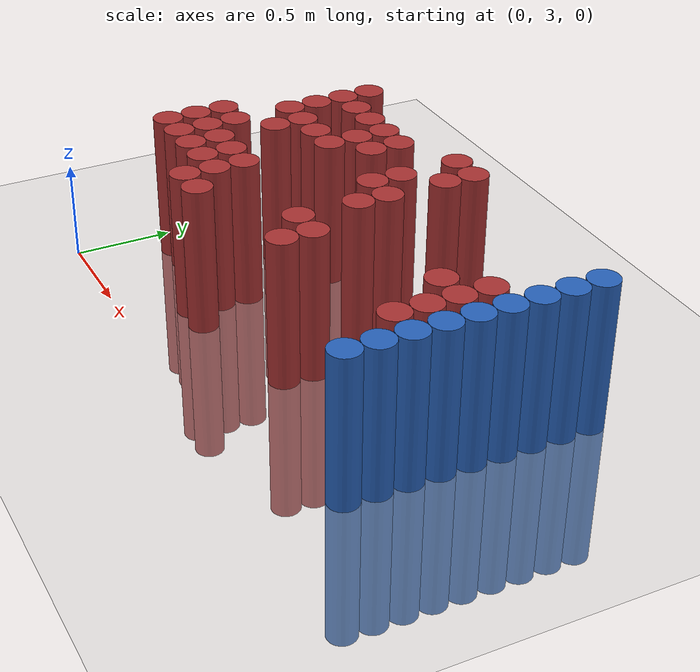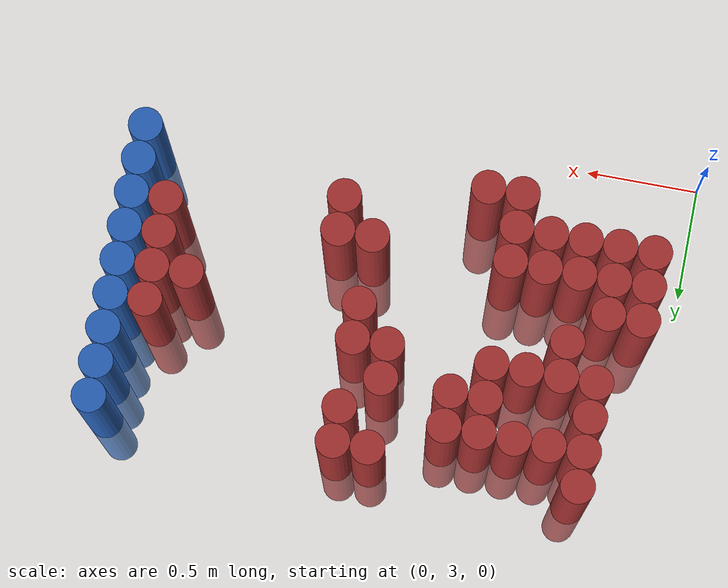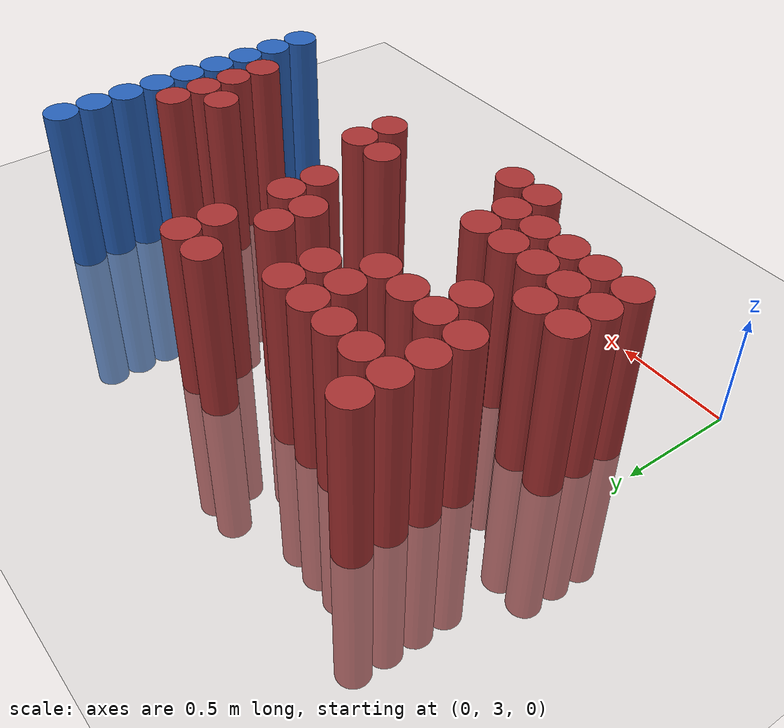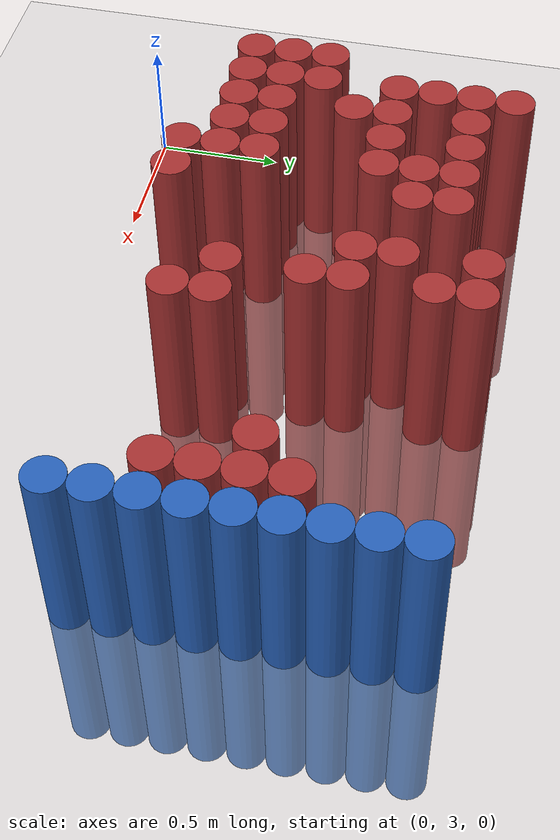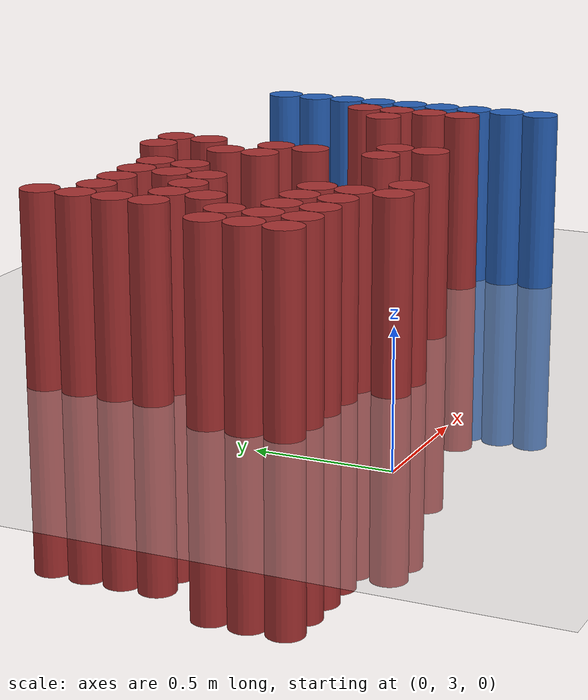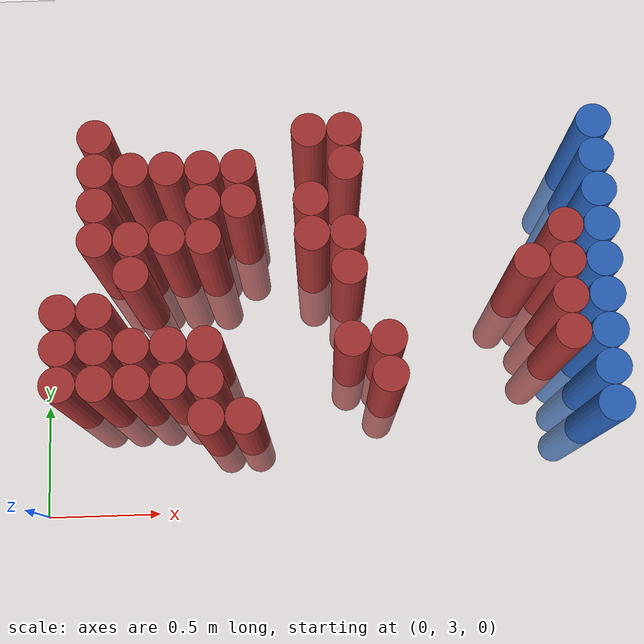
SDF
<sdf version="1.6">
 <world name="default">
  <model name="ground_plane">
   <static>1</static>
   <link name="link">
    <collision name="collision">
     <geometry><plane><normal>0 0 1</normal><size>100 100</size></plane></geometry>
     <surface><friction><ode><mu>100</mu><mu2>50</mu2></ode></friction></surface>
    </collision>
    <visual name="visual">
     <cast_shadows>0</cast_shadows>
     <geometry><plane><normal>0 0 1</normal><size>100 100</size></plane></geometry>
     <material>
      <script><uri>file://media/materials/scripts/gazebo.material</uri><name>Gazebo/Grey</name></script>
     </material>
    </visual>
   </link>
  </model>
  <model name="unit_cylinder_152">
   <static>1</static>
   <pose>0.175000 3.475000 0.000000 0.000000 0.000000 0.000000</pose>
   <link name="link">
    <inertial>
     <mass>1</mass>
     <inertia><ixx>0.145833</ixx><ixy>0</ixy><ixz>0</ixz><iyy>0.145833</iyy><iyz>0</iyz><izz>0.125</izz></inertia>
    </inertial>
    <collision name="collision">
     <geometry><cylinder><radius>0.075000</radius><length>1.5</length></cylinder></geometry>
    </collision>
    <visual name="visual">
     <geometry><cylinder><radius>0.075000</radius><length>1.5</length></cylinder></geometry>
     <material>
      <ambient>0.648000 0.192000 0.192000 1</ambient>
      <diffuse>0.648000 0.192000 0.192000 1</diffuse>
     </material>
     <material>
      <script><name>Gazebo/Grey</name><uri>file://media/materials/scripts/gazebo.material</uri></script>
     </material>
    </visual>
   </link>
  </model>
  <model name="unit_cylinder_153">
   <static>1</static>
   <pose>0.175000 3.625000 0.000000 0.000000 0.000000 0.000000</pose>
   <link name="link">
    <inertial>
     <mass>1</mass>
     <inertia><ixx>0.145833</ixx><ixy>0</ixy><ixz>0</ixz><iyy>0.145833</iyy><iyz>0</iyz><izz>0.125</izz></inertia>
    </inertial>
    <collision name="collision">
     <geometry><cylinder><radius>0.075000</radius><length>1.5</length></cylinder></geometry>
    </collision>
    <visual name="visual">
     <geometry><cylinder><radius>0.075000</radius><length>1.5</length></cylinder></geometry>
     <material>
      <ambient>0.648000 0.192000 0.192000 1</ambient>
      <diffuse>0.648000 0.192000 0.192000 1</diffuse>
     </material>
     <material>
      <script><name>Gazebo/Grey</name><uri>file://media/materials/scripts/gazebo.material</uri></script>
     </material>
    </visual>
   </link>
  </model>
  <model name="unit_cylinder_154">
   <static>1</static>
   <pose>0.175000 3.775000 0.000000 0.000000 0.000000 0.000000</pose>
   <link name="link">
    <inertial>
     <mass>1</mass>
     <inertia><ixx>0.145833</ixx><ixy>0</ixy><ixz>0</ixz><iyy>0.145833</iyy><iyz>0</iyz><izz>0.125</izz></inertia>
    </inertial>
    <collision name="collision">
     <geometry><cylinder><radius>0.075000</radius><length>1.5</length></cylinder></geometry>
    </collision>
    <visual name="visual">
     <geometry><cylinder><radius>0.075000</radius><length>1.5</length></cylinder></geometry>
     <material>
      <ambient>0.648000 0.192000 0.192000 1</ambient>
      <diffuse>0.648000 0.192000 0.192000 1</diffuse>
     </material>
     <material>
      <script><name>Gazebo/Grey</name><uri>file://media/materials/scripts/gazebo.material</uri></script>
     </material>
    </visual>
   </link>
  </model>
  <model name="unit_cylinder_156">
   <static>1</static>
   <pose>0.325000 3.475000 0.000000 0.000000 0.000000 0.000000</pose>
   <link name="link">
    <inertial>
     <mass>1</mass>
     <inertia><ixx>0.145833</ixx><ixy>0</ixy><ixz>0</ixz><iyy>0.145833</iyy><iyz>0</iyz><izz>0.125</izz></inertia>
    </inertial>
    <collision name="collision">
     <geometry><cylinder><radius>0.075000</radius><length>1.5</length></cylinder></geometry>
    </collision>
    <visual name="visual">
     <geometry><cylinder><radius>0.075000</radius><length>1.5</length></cylinder></geometry>
     <material>
      <ambient>0.648000 0.192000 0.192000 1</ambient>
      <diffuse>0.648000 0.192000 0.192000 1</diffuse>
     </material>
     <material>
      <script><name>Gazebo/Grey</name><uri>file://media/materials/scripts/gazebo.material</uri></script>
     </material>
    </visual>
   </link>
  </model>
  <model name="unit_cylinder_157">
   <static>1</static>
   <pose>0.325000 3.625000 0.000000 0.000000 0.000000 0.000000</pose>
   <link name="link">
    <inertial>
     <mass>1</mass>
     <inertia><ixx>0.145833</ixx><ixy>0</ixy><ixz>0</ixz><iyy>0.145833</iyy><iyz>0</iyz><izz>0.125</izz></inertia>
    </inertial>
    <collision name="collision">
     <geometry><cylinder><radius>0.075000</radius><length>1.5</length></cylinder></geometry>
    </collision>
    <visual name="visual">
     <geometry><cylinder><radius>0.075000</radius><length>1.5</length></cylinder></geometry>
     <material>
      <ambient>0.648000 0.192000 0.192000 1</ambient>
      <diffuse>0.648000 0.192000 0.192000 1</diffuse>
     </material>
     <material>
      <script><name>Gazebo/Grey</name><uri>file://media/materials/scripts/gazebo.material</uri></script>
     </material>
    </visual>
   </link>
  </model>
  <model name="unit_cylinder_158">
   <static>1</static>
   <pose>0.325000 3.775000 0.000000 0.000000 0.000000 0.000000</pose>
   <link name="link">
    <inertial>
     <mass>1</mass>
     <inertia><ixx>0.145833</ixx><ixy>0</ixy><ixz>0</ixz><iyy>0.145833</iyy><iyz>0</iyz><izz>0.125</izz></inertia>
    </inertial>
    <collision name="collision">
     <geometry><cylinder><radius>0.075000</radius><length>1.5</length></cylinder></geometry>
    </collision>
    <visual name="visual">
     <geometry><cylinder><radius>0.075000</radius><length>1.5</length></cylinder></geometry>
     <material>
      <ambient>0.648000 0.192000 0.192000 1</ambient>
      <diffuse>0.648000 0.192000 0.192000 1</diffuse>
     </material>
     <material>
      <script><name>Gazebo/Grey</name><uri>file://media/materials/scripts/gazebo.material</uri></script>
     </material>
    </visual>
   </link>
  </model>
  <model name="unit_cylinder_159">
   <static>1</static>
   <pose>0.325000 4.075000 0.000000 0.000000 0.000000 0.000000</pose>
   <link name="link">
    <inertial>
     <mass>1</mass>
     <inertia><ixx>0.145833</ixx><ixy>0</ixy><ixz>0</ixz><iyy>0.145833</iyy><iyz>0</iyz><izz>0.125</izz></inertia>
    </inertial>
    <collision name="collision">
     <geometry><cylinder><radius>0.075000</radius><length>1.5</length></cylinder></geometry>
    </collision>
    <visual name="visual">
     <geometry><cylinder><radius>0.075000</radius><length>1.5</length></cylinder></geometry>
     <material>
      <ambient>0.648000 0.192000 0.192000 1</ambient>
      <diffuse>0.648000 0.192000 0.192000 1</diffuse>
     </material>
     <material>
      <script><name>Gazebo/Grey</name><uri>file://media/materials/scripts/gazebo.material</uri></script>
     </material>
    </visual>
   </link>
  </model>
  <model name="unit_cylinder_160">
   <static>1</static>
   <pose>0.325000 4.225000 0.000000 0.000000 0.000000 0.000000</pose>
   <link name="link">
    <inertial>
     <mass>1</mass>
     <inertia><ixx>0.145833</ixx><ixy>0</ixy><ixz>0</ixz><iyy>0.145833</iyy><iyz>0</iyz><izz>0.125</izz></inertia>
    </inertial>
    <collision name="collision">
     <geometry><cylinder><radius>0.075000</radius><length>1.5</length></cylinder></geometry>
    </collision>
    <visual name="visual">
     <geometry><cylinder><radius>0.075000</radius><length>1.5</length></cylinder></geometry>
     <material>
      <ambient>0.648000 0.192000 0.192000 1</ambient>
      <diffuse>0.648000 0.192000 0.192000 1</diffuse>
     </material>
     <material>
      <script><name>Gazebo/Grey</name><uri>file://media/materials/scripts/gazebo.material</uri></script>
     </material>
    </visual>
   </link>
  </model>
  <model name="unit_cylinder_161">
   <static>1</static>
   <pose>0.325000 4.375000 0.000000 0.000000 0.000000 0.000000</pose>
   <link name="link">
    <inertial>
     <mass>1</mass>
     <inertia><ixx>0.145833</ixx><ixy>0</ixy><ixz>0</ixz><iyy>0.145833</iyy><iyz>0</iyz><izz>0.125</izz></inertia>
    </inertial>
    <collision name="collision">
     <geometry><cylinder><radius>0.075000</radius><length>1.5</length></cylinder></geometry>
    </collision>
    <visual name="visual">
     <geometry><cylinder><radius>0.075000</radius><length>1.5</length></cylinder></geometry>
     <material>
      <ambient>0.648000 0.192000 0.192000 1</ambient>
      <diffuse>0.648000 0.192000 0.192000 1</diffuse>
     </material>
     <material>
      <script><name>Gazebo/Grey</name><uri>file://media/materials/scripts/gazebo.material</uri></script>
     </material>
    </visual>
   </link>
  </model>
  <model name="unit_cylinder_162">
   <static>1</static>
   <pose>0.325000 4.525000 0.000000 0.000000 0.000000 0.000000</pose>
   <link name="link">
    <inertial>
     <mass>1</mass>
     <inertia><ixx>0.145833</ixx><ixy>0</ixy><ixz>0</ixz><iyy>0.145833</iyy><iyz>0</iyz><izz>0.125</izz></inertia>
    </inertial>
    <collision name="collision">
     <geometry><cylinder><radius>0.075000</radius><length>1.5</length></cylinder></geometry>
    </collision>
    <visual name="visual">
     <geometry><cylinder><radius>0.075000</radius><length>1.5</length></cylinder></geometry>
     <material>
      <ambient>0.648000 0.192000 0.192000 1</ambient>
      <diffuse>0.648000 0.192000 0.192000 1</diffuse>
     </material>
     <material>
      <script><name>Gazebo/Grey</name><uri>file://media/materials/scripts/gazebo.material</uri></script>
     </material>
    </visual>
   </link>
  </model>
  <model name="unit_cylinder_165">
   <static>1</static>
   <pose>0.475000 3.475000 0.000000 0.000000 0.000000 0.000000</pose>
   <link name="link">
    <inertial>
     <mass>1</mass>
     <inertia><ixx>0.145833</ixx><ixy>0</ixy><ixz>0</ixz><iyy>0.145833</iyy><iyz>0</iyz><izz>0.125</izz></inertia>
    </inertial>
    <collision name="collision">
     <geometry><cylinder><radius>0.075000</radius><length>1.5</length></cylinder></geometry>
    </collision>
    <visual name="visual">
     <geometry><cylinder><radius>0.075000</radius><length>1.5</length></cylinder></geometry>
     <material>
      <ambient>0.648000 0.192000 0.192000 1</ambient>
      <diffuse>0.648000 0.192000 0.192000 1</diffuse>
     </material>
     <material>
      <script><name>Gazebo/Grey</name><uri>file://media/materials/scripts/gazebo.material</uri></script>
     </material>
    </visual>
   </link>
  </model>
  <model name="unit_cylinder_166">
   <static>1</static>
   <pose>0.475000 3.625000 0.000000 0.000000 0.000000 0.000000</pose>
   <link name="link">
    <inertial>
     <mass>1</mass>
     <inertia><ixx>0.145833</ixx><ixy>0</ixy><ixz>0</ixz><iyy>0.145833</iyy><iyz>0</iyz><izz>0.125</izz></inertia>
    </inertial>
    <collision name="collision">
     <geometry><cylinder><radius>0.075000</radius><length>1.5</length></cylinder></geometry>
    </collision>
    <visual name="visual">
     <geometry><cylinder><radius>0.075000</radius><length>1.5</length></cylinder></geometry>
     <material>
      <ambient>0.648000 0.192000 0.192000 1</ambient>
      <diffuse>0.648000 0.192000 0.192000 1</diffuse>
     </material>
     <material>
      <script><name>Gazebo/Grey</name><uri>file://media/materials/scripts/gazebo.material</uri></script>
     </material>
    </visual>
   </link>
  </model>
  <model name="unit_cylinder_167">
   <static>1</static>
   <pose>0.475000 3.925000 0.000000 0.000000 0.000000 0.000000</pose>
   <link name="link">
    <inertial>
     <mass>1</mass>
     <inertia><ixx>0.145833</ixx><ixy>0</ixy><ixz>0</ixz><iyy>0.145833</iyy><iyz>0</iyz><izz>0.125</izz></inertia>
    </inertial>
    <collision name="collision">
     <geometry><cylinder><radius>0.075000</radius><length>1.5</length></cylinder></geometry>
    </collision>
    <visual name="visual">
     <geometry><cylinder><radius>0.075000</radius><length>1.5</length></cylinder></geometry>
     <material>
      <ambient>0.648000 0.192000 0.192000 1</ambient>
      <diffuse>0.648000 0.192000 0.192000 1</diffuse>
     </material>
     <material>
      <script><name>Gazebo/Grey</name><uri>file://media/materials/scripts/gazebo.material</uri></script>
     </material>
    </visual>
   </link>
  </model>
  <model name="unit_cylinder_168">
   <static>1</static>
   <pose>0.475000 4.075000 0.000000 0.000000 0.000000 0.000000</pose>
   <link name="link">
    <inertial>
     <mass>1</mass>
     <inertia><ixx>0.145833</ixx><ixy>0</ixy><ixz>0</ixz><iyy>0.145833</iyy><iyz>0</iyz><izz>0.125</izz></inertia>
    </inertial>
    <collision name="collision">
     <geometry><cylinder><radius>0.075000</radius><length>1.5</length></cylinder></geometry>
    </collision>
    <visual name="visual">
     <geometry><cylinder><radius>0.075000</radius><length>1.5</length></cylinder></geometry>
     <material>
      <ambient>0.648000 0.192000 0.192000 1</ambient>
      <diffuse>0.648000 0.192000 0.192000 1</diffuse>
     </material>
     <material>
      <script><name>Gazebo/Grey</name><uri>file://media/materials/scripts/gazebo.material</uri></script>
     </material>
    </visual>
   </link>
  </model>
  <model name="unit_cylinder_169">
   <static>1</static>
   <pose>0.475000 4.375000 0.000000 0.000000 0.000000 0.000000</pose>
   <link name="link">
    <inertial>
     <mass>1</mass>
     <inertia><ixx>0.145833</ixx><ixy>0</ixy><ixz>0</ixz><iyy>0.145833</iyy><iyz>0</iyz><izz>0.125</izz></inertia>
    </inertial>
    <collision name="collision">
     <geometry><cylinder><radius>0.075000</radius><length>1.5</length></cylinder></geometry>
    </collision>
    <visual name="visual">
     <geometry><cylinder><radius>0.075000</radius><length>1.5</length></cylinder></geometry>
     <material>
      <ambient>0.648000 0.192000 0.192000 1</ambient>
      <diffuse>0.648000 0.192000 0.192000 1</diffuse>
     </material>
     <material>
      <script><name>Gazebo/Grey</name><uri>file://media/materials/scripts/gazebo.material</uri></script>
     </material>
    </visual>
   </link>
  </model>
  <model name="unit_cylinder_172">
   <static>1</static>
   <pose>0.625000 3.475000 0.000000 0.000000 0.000000 0.000000</pose>
   <link name="link">
    <inertial>
     <mass>1</mass>
     <inertia><ixx>0.145833</ixx><ixy>0</ixy><ixz>0</ixz><iyy>0.145833</iyy><iyz>0</iyz><izz>0.125</izz></inertia>
    </inertial>
    <collision name="collision">
     <geometry><cylinder><radius>0.075000</radius><length>1.5</length></cylinder></geometry>
    </collision>
    <visual name="visual">
     <geometry><cylinder><radius>0.075000</radius><length>1.5</length></cylinder></geometry>
     <material>
      <ambient>0.648000 0.192000 0.192000 1</ambient>
      <diffuse>0.648000 0.192000 0.192000 1</diffuse>
     </material>
     <material>
      <script><name>Gazebo/Grey</name><uri>file://media/materials/scripts/gazebo.material</uri></script>
     </material>
    </visual>
   </link>
  </model>
  <model name="unit_cylinder_173">
   <static>1</static>
   <pose>0.625000 3.625000 0.000000 0.000000 0.000000 0.000000</pose>
   <link name="link">
    <inertial>
     <mass>1</mass>
     <inertia><ixx>0.145833</ixx><ixy>0</ixy><ixz>0</ixz><iyy>0.145833</iyy><iyz>0</iyz><izz>0.125</izz></inertia>
    </inertial>
    <collision name="collision">
     <geometry><cylinder><radius>0.075000</radius><length>1.5</length></cylinder></geometry>
    </collision>
    <visual name="visual">
     <geometry><cylinder><radius>0.075000</radius><length>1.5</length></cylinder></geometry>
     <material>
      <ambient>0.648000 0.192000 0.192000 1</ambient>
      <diffuse>0.648000 0.192000 0.192000 1</diffuse>
     </material>
     <material>
      <script><name>Gazebo/Grey</name><uri>file://media/materials/scripts/gazebo.material</uri></script>
     </material>
    </visual>
   </link>
  </model>
  <model name="unit_cylinder_174">
   <static>1</static>
   <pose>0.625000 4.075000 0.000000 0.000000 0.000000 0.000000</pose>
   <link name="link">
    <inertial>
     <mass>1</mass>
     <inertia><ixx>0.145833</ixx><ixy>0</ixy><ixz>0</ixz><iyy>0.145833</iyy><iyz>0</iyz><izz>0.125</izz></inertia>
    </inertial>
    <collision name="collision">
     <geometry><cylinder><radius>0.075000</radius><length>1.5</length></cylinder></geometry>
    </collision>
    <visual name="visual">
     <geometry><cylinder><radius>0.075000</radius><length>1.5</length></cylinder></geometry>
     <material>
      <ambient>0.648000 0.192000 0.192000 1</ambient>
      <diffuse>0.648000 0.192000 0.192000 1</diffuse>
     </material>
     <material>
      <script><name>Gazebo/Grey</name><uri>file://media/materials/scripts/gazebo.material</uri></script>
     </material>
    </visual>
   </link>
  </model>
  <model name="unit_cylinder_175">
   <static>1</static>
   <pose>0.625000 4.375000 0.000000 0.000000 0.000000 0.000000</pose>
   <link name="link">
    <inertial>
     <mass>1</mass>
     <inertia><ixx>0.145833</ixx><ixy>0</ixy><ixz>0</ixz><iyy>0.145833</iyy><iyz>0</iyz><izz>0.125</izz></inertia>
    </inertial>
    <collision name="collision">
     <geometry><cylinder><radius>0.075000</radius><length>1.5</length></cylinder></geometry>
    </collision>
    <visual name="visual">
     <geometry><cylinder><radius>0.075000</radius><length>1.5</length></cylinder></geometry>
     <material>
      <ambient>0.648000 0.192000 0.192000 1</ambient>
      <diffuse>0.648000 0.192000 0.192000 1</diffuse>
     </material>
     <material>
      <script><name>Gazebo/Grey</name><uri>file://media/materials/scripts/gazebo.material</uri></script>
     </material>
    </visual>
   </link>
  </model>
  <model name="unit_cylinder_181">
   <static>1</static>
   <pose>0.775000 3.325000 0.000000 0.000000 0.000000 0.000000</pose>
   <link name="link">
    <inertial>
     <mass>1</mass>
     <inertia><ixx>0.145833</ixx><ixy>0</ixy><ixz>0</ixz><iyy>0.145833</iyy><iyz>0</iyz><izz>0.125</izz></inertia>
    </inertial>
    <collision name="collision">
     <geometry><cylinder><radius>0.075000</radius><length>1.5</length></cylinder></geometry>
    </collision>
    <visual name="visual">
     <geometry><cylinder><radius>0.075000</radius><length>1.5</length></cylinder></geometry>
     <material>
      <ambient>0.648000 0.192000 0.192000 1</ambient>
      <diffuse>0.648000 0.192000 0.192000 1</diffuse>
     </material>
     <material>
      <script><name>Gazebo/Grey</name><uri>file://media/materials/scripts/gazebo.material</uri></script>
     </material>
    </visual>
   </link>
  </model>
  <model name="unit_cylinder_182">
   <static>1</static>
   <pose>0.775000 3.475000 0.000000 0.000000 0.000000 0.000000</pose>
   <link name="link">
    <inertial>
     <mass>1</mass>
     <inertia><ixx>0.145833</ixx><ixy>0</ixy><ixz>0</ixz><iyy>0.145833</iyy><iyz>0</iyz><izz>0.125</izz></inertia>
    </inertial>
    <collision name="collision">
     <geometry><cylinder><radius>0.075000</radius><length>1.5</length></cylinder></geometry>
    </collision>
    <visual name="visual">
     <geometry><cylinder><radius>0.075000</radius><length>1.5</length></cylinder></geometry>
     <material>
      <ambient>0.648000 0.192000 0.192000 1</ambient>
      <diffuse>0.648000 0.192000 0.192000 1</diffuse>
     </material>
     <material>
      <script><name>Gazebo/Grey</name><uri>file://media/materials/scripts/gazebo.material</uri></script>
     </material>
    </visual>
   </link>
  </model>
  <model name="unit_cylinder_183">
   <static>1</static>
   <pose>0.775000 3.625000 0.000000 0.000000 0.000000 0.000000</pose>
   <link name="link">
    <inertial>
     <mass>1</mass>
     <inertia><ixx>0.145833</ixx><ixy>0</ixy><ixz>0</ixz><iyy>0.145833</iyy><iyz>0</iyz><izz>0.125</izz></inertia>
    </inertial>
    <collision name="collision">
     <geometry><cylinder><radius>0.075000</radius><length>1.5</length></cylinder></geometry>
    </collision>
    <visual name="visual">
     <geometry><cylinder><radius>0.075000</radius><length>1.5</length></cylinder></geometry>
     <material>
      <ambient>0.648000 0.192000 0.192000 1</ambient>
      <diffuse>0.648000 0.192000 0.192000 1</diffuse>
     </material>
     <material>
      <script><name>Gazebo/Grey</name><uri>file://media/materials/scripts/gazebo.material</uri></script>
     </material>
    </visual>
   </link>
  </model>
  <model name="unit_cylinder_184">
   <static>1</static>
   <pose>0.775000 4.075000 0.000000 0.000000 0.000000 0.000000</pose>
   <link name="link">
    <inertial>
     <mass>1</mass>
     <inertia><ixx>0.145833</ixx><ixy>0</ixy><ixz>0</ixz><iyy>0.145833</iyy><iyz>0</iyz><izz>0.125</izz></inertia>
    </inertial>
    <collision name="collision">
     <geometry><cylinder><radius>0.075000</radius><length>1.5</length></cylinder></geometry>
    </collision>
    <visual name="visual">
     <geometry><cylinder><radius>0.075000</radius><length>1.5</length></cylinder></geometry>
     <material>
      <ambient>0.648000 0.192000 0.192000 1</ambient>
      <diffuse>0.648000 0.192000 0.192000 1</diffuse>
     </material>
     <material>
      <script><name>Gazebo/Grey</name><uri>file://media/materials/scripts/gazebo.material</uri></script>
     </material>
    </visual>
   </link>
  </model>
  <model name="unit_cylinder_185">
   <static>1</static>
   <pose>0.775000 4.225000 0.000000 0.000000 0.000000 0.000000</pose>
   <link name="link">
    <inertial>
     <mass>1</mass>
     <inertia><ixx>0.145833</ixx><ixy>0</ixy><ixz>0</ixz><iyy>0.145833</iyy><iyz>0</iyz><izz>0.125</izz></inertia>
    </inertial>
    <collision name="collision">
     <geometry><cylinder><radius>0.075000</radius><length>1.5</length></cylinder></geometry>
    </collision>
    <visual name="visual">
     <geometry><cylinder><radius>0.075000</radius><length>1.5</length></cylinder></geometry>
     <material>
      <ambient>0.648000 0.192000 0.192000 1</ambient>
      <diffuse>0.648000 0.192000 0.192000 1</diffuse>
     </material>
     <material>
      <script><name>Gazebo/Grey</name><uri>file://media/materials/scripts/gazebo.material</uri></script>
     </material>
    </visual>
   </link>
  </model>
  <model name="unit_cylinder_186">
   <static>1</static>
   <pose>0.775000 4.375000 0.000000 0.000000 0.000000 0.000000</pose>
   <link name="link">
    <inertial>
     <mass>1</mass>
     <inertia><ixx>0.145833</ixx><ixy>0</ixy><ixz>0</ixz><iyy>0.145833</iyy><iyz>0</iyz><izz>0.125</izz></inertia>
    </inertial>
    <collision name="collision">
     <geometry><cylinder><radius>0.075000</radius><length>1.5</length></cylinder></geometry>
    </collision>
    <visual name="visual">
     <geometry><cylinder><radius>0.075000</radius><length>1.5</length></cylinder></geometry>
     <material>
      <ambient>0.648000 0.192000 0.192000 1</ambient>
      <diffuse>0.648000 0.192000 0.192000 1</diffuse>
     </material>
     <material>
      <script><name>Gazebo/Grey</name><uri>file://media/materials/scripts/gazebo.material</uri></script>
     </material>
    </visual>
   </link>
  </model>
  <model name="unit_cylinder_189">
   <static>1</static>
   <pose>0.925000 3.325000 0.000000 0.000000 0.000000 0.000000</pose>
   <link name="link">
    <inertial>
     <mass>1</mass>
     <inertia><ixx>0.145833</ixx><ixy>0</ixy><ixz>0</ixz><iyy>0.145833</iyy><iyz>0</iyz><izz>0.125</izz></inertia>
    </inertial>
    <collision name="collision">
     <geometry><cylinder><radius>0.075000</radius><length>1.5</length></cylinder></geometry>
    </collision>
    <visual name="visual">
     <geometry><cylinder><radius>0.075000</radius><length>1.5</length></cylinder></geometry>
     <material>
      <ambient>0.648000 0.192000 0.192000 1</ambient>
      <diffuse>0.648000 0.192000 0.192000 1</diffuse>
     </material>
     <material>
      <script><name>Gazebo/Grey</name><uri>file://media/materials/scripts/gazebo.material</uri></script>
     </material>
    </visual>
   </link>
  </model>
  <model name="unit_cylinder_190">
   <static>1</static>
   <pose>0.925000 4.225000 0.000000 0.000000 0.000000 0.000000</pose>
   <link name="link">
    <inertial>
     <mass>1</mass>
     <inertia><ixx>0.145833</ixx><ixy>0</ixy><ixz>0</ixz><iyy>0.145833</iyy><iyz>0</iyz><izz>0.125</izz></inertia>
    </inertial>
    <collision name="collision">
     <geometry><cylinder><radius>0.075000</radius><length>1.5</length></cylinder></geometry>
    </collision>
    <visual name="visual">
     <geometry><cylinder><radius>0.075000</radius><length>1.5</length></cylinder></geometry>
     <material>
      <ambient>0.648000 0.192000 0.192000 1</ambient>
      <diffuse>0.648000 0.192000 0.192000 1</diffuse>
     </material>
     <material>
      <script><name>Gazebo/Grey</name><uri>file://media/materials/scripts/gazebo.material</uri></script>
     </material>
    </visual>
   </link>
  </model>
  <model name="unit_cylinder_191">
   <static>1</static>
   <pose>0.925000 4.375000 0.000000 0.000000 0.000000 0.000000</pose>
   <link name="link">
    <inertial>
     <mass>1</mass>
     <inertia><ixx>0.145833</ixx><ixy>0</ixy><ixz>0</ixz><iyy>0.145833</iyy><iyz>0</iyz><izz>0.125</izz></inertia>
    </inertial>
    <collision name="collision">
     <geometry><cylinder><radius>0.075000</radius><length>1.5</length></cylinder></geometry>
    </collision>
    <visual name="visual">
     <geometry><cylinder><radius>0.075000</radius><length>1.5</length></cylinder></geometry>
     <material>
      <ambient>0.648000 0.192000 0.192000 1</ambient>
      <diffuse>0.648000 0.192000 0.192000 1</diffuse>
     </material>
     <material>
      <script><name>Gazebo/Grey</name><uri>file://media/materials/scripts/gazebo.material</uri></script>
     </material>
    </visual>
   </link>
  </model>
  <model name="unit_cylinder_194">
   <static>1</static>
   <pose>1.225000 4.075000 0.000000 0.000000 0.000000 0.000000</pose>
   <link name="link">
    <inertial>
     <mass>1</mass>
     <inertia><ixx>0.145833</ixx><ixy>0</ixy><ixz>0</ixz><iyy>0.145833</iyy><iyz>0</iyz><izz>0.125</izz></inertia>
    </inertial>
    <collision name="collision">
     <geometry><cylinder><radius>0.075000</radius><length>1.5</length></cylinder></geometry>
    </collision>
    <visual name="visual">
     <geometry><cylinder><radius>0.075000</radius><length>1.5</length></cylinder></geometry>
     <material>
      <ambient>0.648000 0.192000 0.192000 1</ambient>
      <diffuse>0.648000 0.192000 0.192000 1</diffuse>
     </material>
     <material>
      <script><name>Gazebo/Grey</name><uri>file://media/materials/scripts/gazebo.material</uri></script>
     </material>
    </visual>
   </link>
  </model>
  <model name="unit_cylinder_195">
   <static>1</static>
   <pose>1.225000 4.225000 0.000000 0.000000 0.000000 0.000000</pose>
   <link name="link">
    <inertial>
     <mass>1</mass>
     <inertia><ixx>0.145833</ixx><ixy>0</ixy><ixz>0</ixz><iyy>0.145833</iyy><iyz>0</iyz><izz>0.125</izz></inertia>
    </inertial>
    <collision name="collision">
     <geometry><cylinder><radius>0.075000</radius><length>1.5</length></cylinder></geometry>
    </collision>
    <visual name="visual">
     <geometry><cylinder><radius>0.075000</radius><length>1.5</length></cylinder></geometry>
     <material>
      <ambient>0.648000 0.192000 0.192000 1</ambient>
      <diffuse>0.648000 0.192000 0.192000 1</diffuse>
     </material>
     <material>
      <script><name>Gazebo/Grey</name><uri>file://media/materials/scripts/gazebo.material</uri></script>
     </material>
    </visual>
   </link>
  </model>
  <model name="unit_cylinder_196">
   <static>1</static>
   <pose>1.225000 4.525000 0.000000 0.000000 0.000000 0.000000</pose>
   <link name="link">
    <inertial>
     <mass>1</mass>
     <inertia><ixx>0.145833</ixx><ixy>0</ixy><ixz>0</ixz><iyy>0.145833</iyy><iyz>0</iyz><izz>0.125</izz></inertia>
    </inertial>
    <collision name="collision">
     <geometry><cylinder><radius>0.075000</radius><length>1.5</length></cylinder></geometry>
    </collision>
    <visual name="visual">
     <geometry><cylinder><radius>0.075000</radius><length>1.5</length></cylinder></geometry>
     <material>
      <ambient>0.648000 0.192000 0.192000 1</ambient>
      <diffuse>0.648000 0.192000 0.192000 1</diffuse>
     </material>
     <material>
      <script><name>Gazebo/Grey</name><uri>file://media/materials/scripts/gazebo.material</uri></script>
     </material>
    </visual>
   </link>
  </model>
  <model name="unit_cylinder_198">
   <static>1</static>
   <pose>1.375000 3.625000 0.000000 0.000000 0.000000 0.000000</pose>
   <link name="link">
    <inertial>
     <mass>1</mass>
     <inertia><ixx>0.145833</ixx><ixy>0</ixy><ixz>0</ixz><iyy>0.145833</iyy><iyz>0</iyz><izz>0.125</izz></inertia>
    </inertial>
    <collision name="collision">
     <geometry><cylinder><radius>0.075000</radius><length>1.5</length></cylinder></geometry>
    </collision>
    <visual name="visual">
     <geometry><cylinder><radius>0.075000</radius><length>1.5</length></cylinder></geometry>
     <material>
      <ambient>0.648000 0.192000 0.192000 1</ambient>
      <diffuse>0.648000 0.192000 0.192000 1</diffuse>
     </material>
     <material>
      <script><name>Gazebo/Grey</name><uri>file://media/materials/scripts/gazebo.material</uri></script>
     </material>
    </visual>
   </link>
  </model>
  <model name="unit_cylinder_199">
   <static>1</static>
   <pose>1.375000 3.925000 0.000000 0.000000 0.000000 0.000000</pose>
   <link name="link">
    <inertial>
     <mass>1</mass>
     <inertia><ixx>0.145833</ixx><ixy>0</ixy><ixz>0</ixz><iyy>0.145833</iyy><iyz>0</iyz><izz>0.125</izz></inertia>
    </inertial>
    <collision name="collision">
     <geometry><cylinder><radius>0.075000</radius><length>1.5</length></cylinder></geometry>
    </collision>
    <visual name="visual">
     <geometry><cylinder><radius>0.075000</radius><length>1.5</length></cylinder></geometry>
     <material>
      <ambient>0.648000 0.192000 0.192000 1</ambient>
      <diffuse>0.648000 0.192000 0.192000 1</diffuse>
     </material>
     <material>
      <script><name>Gazebo/Grey</name><uri>file://media/materials/scripts/gazebo.material</uri></script>
     </material>
    </visual>
   </link>
  </model>
  <model name="unit_cylinder_200">
   <static>1</static>
   <pose>1.375000 4.075000 0.000000 0.000000 0.000000 0.000000</pose>
   <link name="link">
    <inertial>
     <mass>1</mass>
     <inertia><ixx>0.145833</ixx><ixy>0</ixy><ixz>0</ixz><iyy>0.145833</iyy><iyz>0</iyz><izz>0.125</izz></inertia>
    </inertial>
    <collision name="collision">
     <geometry><cylinder><radius>0.075000</radius><length>1.5</length></cylinder></geometry>
    </collision>
    <visual name="visual">
     <geometry><cylinder><radius>0.075000</radius><length>1.5</length></cylinder></geometry>
     <material>
      <ambient>0.648000 0.192000 0.192000 1</ambient>
      <diffuse>0.648000 0.192000 0.192000 1</diffuse>
     </material>
     <material>
      <script><name>Gazebo/Grey</name><uri>file://media/materials/scripts/gazebo.material</uri></script>
     </material>
    </visual>
   </link>
  </model>
  <model name="unit_cylinder_201">
   <static>1</static>
   <pose>1.375000 4.375000 0.000000 0.000000 0.000000 0.000000</pose>
   <link name="link">
    <inertial>
     <mass>1</mass>
     <inertia><ixx>0.145833</ixx><ixy>0</ixy><ixz>0</ixz><iyy>0.145833</iyy><iyz>0</iyz><izz>0.125</izz></inertia>
    </inertial>
    <collision name="collision">
     <geometry><cylinder><radius>0.075000</radius><length>1.5</length></cylinder></geometry>
    </collision>
    <visual name="visual">
     <geometry><cylinder><radius>0.075000</radius><length>1.5</length></cylinder></geometry>
     <material>
      <ambient>0.648000 0.192000 0.192000 1</ambient>
      <diffuse>0.648000 0.192000 0.192000 1</diffuse>
     </material>
     <material>
      <script><name>Gazebo/Grey</name><uri>file://media/materials/scripts/gazebo.material</uri></script>
     </material>
    </visual>
   </link>
  </model>
  <model name="unit_cylinder_202">
   <static>1</static>
   <pose>1.375000 4.525000 0.000000 0.000000 0.000000 0.000000</pose>
   <link name="link">
    <inertial>
     <mass>1</mass>
     <inertia><ixx>0.145833</ixx><ixy>0</ixy><ixz>0</ixz><iyy>0.145833</iyy><iyz>0</iyz><izz>0.125</izz></inertia>
    </inertial>
    <collision name="collision">
     <geometry><cylinder><radius>0.075000</radius><length>1.5</length></cylinder></geometry>
    </collision>
    <visual name="visual">
     <geometry><cylinder><radius>0.075000</radius><length>1.5</length></cylinder></geometry>
     <material>
      <ambient>0.648000 0.192000 0.192000 1</ambient>
      <diffuse>0.648000 0.192000 0.192000 1</diffuse>
     </material>
     <material>
      <script><name>Gazebo/Grey</name><uri>file://media/materials/scripts/gazebo.material</uri></script>
     </material>
    </visual>
   </link>
  </model>
  <model name="unit_cylinder_203">
   <static>1</static>
   <pose>1.525000 3.475000 0.000000 0.000000 0.000000 0.000000</pose>
   <link name="link">
    <inertial>
     <mass>1</mass>
     <inertia><ixx>0.145833</ixx><ixy>0</ixy><ixz>0</ixz><iyy>0.145833</iyy><iyz>0</iyz><izz>0.125</izz></inertia>
    </inertial>
    <collision name="collision">
     <geometry><cylinder><radius>0.075000</radius><length>1.5</length></cylinder></geometry>
    </collision>
    <visual name="visual">
     <geometry><cylinder><radius>0.075000</radius><length>1.5</length></cylinder></geometry>
     <material>
      <ambient>0.648000 0.192000 0.192000 1</ambient>
      <diffuse>0.648000 0.192000 0.192000 1</diffuse>
     </material>
     <material>
      <script><name>Gazebo/Grey</name><uri>file://media/materials/scripts/gazebo.material</uri></script>
     </material>
    </visual>
   </link>
  </model>
  <model name="unit_cylinder_204">
   <static>1</static>
   <pose>1.525000 3.625000 0.000000 0.000000 0.000000 0.000000</pose>
   <link name="link">
    <inertial>
     <mass>1</mass>
     <inertia><ixx>0.145833</ixx><ixy>0</ixy><ixz>0</ixz><iyy>0.145833</iyy><iyz>0</iyz><izz>0.125</izz></inertia>
    </inertial>
    <collision name="collision">
     <geometry><cylinder><radius>0.075000</radius><length>1.5</length></cylinder></geometry>
    </collision>
    <visual name="visual">
     <geometry><cylinder><radius>0.075000</radius><length>1.5</length></cylinder></geometry>
     <material>
      <ambient>0.648000 0.192000 0.192000 1</ambient>
      <diffuse>0.648000 0.192000 0.192000 1</diffuse>
     </material>
     <material>
      <script><name>Gazebo/Grey</name><uri>file://media/materials/scripts/gazebo.material</uri></script>
     </material>
    </visual>
   </link>
  </model>
  <model name="unit_cylinder_219">
   <static>1</static>
   <pose>2.125000 3.925000 0.000000 0.000000 0.000000 0.000000</pose>
   <link name="link">
    <inertial>
     <mass>1</mass>
     <inertia><ixx>0.145833</ixx><ixy>0</ixy><ixz>0</ixz><iyy>0.145833</iyy><iyz>0</iyz><izz>0.125</izz></inertia>
    </inertial>
    <collision name="collision">
     <geometry><cylinder><radius>0.075000</radius><length>1.5</length></cylinder></geometry>
    </collision>
    <visual name="visual">
     <geometry><cylinder><radius>0.075000</radius><length>1.5</length></cylinder></geometry>
     <material>
      <ambient>0.648000 0.192000 0.192000 1</ambient>
      <diffuse>0.648000 0.192000 0.192000 1</diffuse>
     </material>
     <material>
      <script><name>Gazebo/Grey</name><uri>file://media/materials/scripts/gazebo.material</uri></script>
     </material>
    </visual>
   </link>
  </model>
  <model name="unit_cylinder_224">
   <static>1</static>
   <pose>2.275000 3.625000 0.000000 0.000000 0.000000 0.000000</pose>
   <link name="link">
    <inertial>
     <mass>1</mass>
     <inertia><ixx>0.145833</ixx><ixy>0</ixy><ixz>0</ixz><iyy>0.145833</iyy><iyz>0</iyz><izz>0.125</izz></inertia>
    </inertial>
    <collision name="collision">
     <geometry><cylinder><radius>0.075000</radius><length>1.5</length></cylinder></geometry>
    </collision>
    <visual name="visual">
     <geometry><cylinder><radius>0.075000</radius><length>1.5</length></cylinder></geometry>
     <material>
      <ambient>0.648000 0.192000 0.192000 1</ambient>
      <diffuse>0.648000 0.192000 0.192000 1</diffuse>
     </material>
     <material>
      <script><name>Gazebo/Grey</name><uri>file://media/materials/scripts/gazebo.material</uri></script>
     </material>
    </visual>
   </link>
  </model>
  <model name="unit_cylinder_225">
   <static>1</static>
   <pose>2.275000 3.775000 0.000000 0.000000 0.000000 0.000000</pose>
   <link name="link">
    <inertial>
     <mass>1</mass>
     <inertia><ixx>0.145833</ixx><ixy>0</ixy><ixz>0</ixz><iyy>0.145833</iyy><iyz>0</iyz><izz>0.125</izz></inertia>
    </inertial>
    <collision name="collision">
     <geometry><cylinder><radius>0.075000</radius><length>1.5</length></cylinder></geometry>
    </collision>
    <visual name="visual">
     <geometry><cylinder><radius>0.075000</radius><length>1.5</length></cylinder></geometry>
     <material>
      <ambient>0.648000 0.192000 0.192000 1</ambient>
      <diffuse>0.648000 0.192000 0.192000 1</diffuse>
     </material>
     <material>
      <script><name>Gazebo/Grey</name><uri>file://media/materials/scripts/gazebo.material</uri></script>
     </material>
    </visual>
   </link>
  </model>
  <model name="unit_cylinder_226">
   <static>1</static>
   <pose>2.275000 3.925000 0.000000 0.000000 0.000000 0.000000</pose>
   <link name="link">
    <inertial>
     <mass>1</mass>
     <inertia><ixx>0.145833</ixx><ixy>0</ixy><ixz>0</ixz><iyy>0.145833</iyy><iyz>0</iyz><izz>0.125</izz></inertia>
    </inertial>
    <collision name="collision">
     <geometry><cylinder><radius>0.075000</radius><length>1.5</length></cylinder></geometry>
    </collision>
    <visual name="visual">
     <geometry><cylinder><radius>0.075000</radius><length>1.5</length></cylinder></geometry>
     <material>
      <ambient>0.648000 0.192000 0.192000 1</ambient>
      <diffuse>0.648000 0.192000 0.192000 1</diffuse>
     </material>
     <material>
      <script><name>Gazebo/Grey</name><uri>file://media/materials/scripts/gazebo.material</uri></script>
     </material>
    </visual>
   </link>
  </model>
  <model name="unit_cylinder_227">
   <static>1</static>
   <pose>2.275000 4.075000 0.000000 0.000000 0.000000 0.000000</pose>
   <link name="link">
    <inertial>
     <mass>1</mass>
     <inertia><ixx>0.145833</ixx><ixy>0</ixy><ixz>0</ixz><iyy>0.145833</iyy><iyz>0</iyz><izz>0.125</izz></inertia>
    </inertial>
    <collision name="collision">
     <geometry><cylinder><radius>0.075000</radius><length>1.5</length></cylinder></geometry>
    </collision>
    <visual name="visual">
     <geometry><cylinder><radius>0.075000</radius><length>1.5</length></cylinder></geometry>
     <material>
      <ambient>0.648000 0.192000 0.192000 1</ambient>
      <diffuse>0.648000 0.192000 0.192000 1</diffuse>
     </material>
     <material>
      <script><name>Gazebo/Grey</name><uri>file://media/materials/scripts/gazebo.material</uri></script>
     </material>
    </visual>
   </link>
  </model>
  <model name="unit_cylinder_249">
   <static>1</static>
   <pose>2.425000 3.325000 0.000000 0.000000 0.000000 0.000000</pose>
   <link name="link">
    <inertial>
     <mass>1</mass>
     <inertia><ixx>0.145833</ixx><ixy>0</ixy><ixz>0</ixz><iyy>0.145833</iyy><iyz>0</iyz><izz>0.125</izz></inertia>
    </inertial>
    <collision name="collision">
     <geometry><cylinder><radius>0.075000</radius><length>1.5</length></cylinder></geometry>
    </collision>
    <visual name="visual">
     <geometry><cylinder><radius>0.075000</radius><length>1.5</length></cylinder></geometry>
     <material>
      <ambient>0.152000 0.379000 0.720000 1</ambient>
      <diffuse>0.152000 0.379000 0.720000 1</diffuse>
     </material>
     <material>
      <script><name>Gazebo/Grey</name><uri>file://media/materials/scripts/gazebo.material</uri></script>
     </material>
    </visual>
   </link>
  </model>
  <model name="unit_cylinder_250">
   <static>1</static>
   <pose>2.425000 3.475000 0.000000 0.000000 0.000000 0.000000</pose>
   <link name="link">
    <inertial>
     <mass>1</mass>
     <inertia><ixx>0.145833</ixx><ixy>0</ixy><ixz>0</ixz><iyy>0.145833</iyy><iyz>0</iyz><izz>0.125</izz></inertia>
    </inertial>
    <collision name="collision">
     <geometry><cylinder><radius>0.075000</radius><length>1.5</length></cylinder></geometry>
    </collision>
    <visual name="visual">
     <geometry><cylinder><radius>0.075000</radius><length>1.5</length></cylinder></geometry>
     <material>
      <ambient>0.152000 0.379000 0.720000 1</ambient>
      <diffuse>0.152000 0.379000 0.720000 1</diffuse>
     </material>
     <material>
      <script><name>Gazebo/Grey</name><uri>file://media/materials/scripts/gazebo.material</uri></script>
     </material>
    </visual>
   </link>
  </model>
  <model name="unit_cylinder_251">
   <static>1</static>
   <pose>2.425000 3.625000 0.000000 0.000000 0.000000 0.000000</pose>
   <link name="link">
    <inertial>
     <mass>1</mass>
     <inertia><ixx>0.145833</ixx><ixy>0</ixy><ixz>0</ixz><iyy>0.145833</iyy><iyz>0</iyz><izz>0.125</izz></inertia>
    </inertial>
    <collision name="collision">
     <geometry><cylinder><radius>0.075000</radius><length>1.5</length></cylinder></geometry>
    </collision>
    <visual name="visual">
     <geometry><cylinder><radius>0.075000</radius><length>1.5</length></cylinder></geometry>
     <material>
      <ambient>0.152000 0.379000 0.720000 1</ambient>
      <diffuse>0.152000 0.379000 0.720000 1</diffuse>
     </material>
     <material>
      <script><name>Gazebo/Grey</name><uri>file://media/materials/scripts/gazebo.material</uri></script>
     </material>
    </visual>
   </link>
  </model>
  <model name="unit_cylinder_252">
   <static>1</static>
   <pose>2.425000 3.775000 0.000000 0.000000 0.000000 0.000000</pose>
   <link name="link">
    <inertial>
     <mass>1</mass>
     <inertia><ixx>0.145833</ixx><ixy>0</ixy><ixz>0</ixz><iyy>0.145833</iyy><iyz>0</iyz><izz>0.125</izz></inertia>
    </inertial>
    <collision name="collision">
     <geometry><cylinder><radius>0.075000</radius><length>1.5</length></cylinder></geometry>
    </collision>
    <visual name="visual">
     <geometry><cylinder><radius>0.075000</radius><length>1.5</length></cylinder></geometry>
     <material>
      <ambient>0.152000 0.379000 0.720000 1</ambient>
      <diffuse>0.152000 0.379000 0.720000 1</diffuse>
     </material>
     <material>
      <script><name>Gazebo/Grey</name><uri>file://media/materials/scripts/gazebo.material</uri></script>
     </material>
    </visual>
   </link>
  </model>
  <model name="unit_cylinder_253">
   <static>1</static>
   <pose>2.425000 3.925000 0.000000 0.000000 0.000000 0.000000</pose>
   <link name="link">
    <inertial>
     <mass>1</mass>
     <inertia><ixx>0.145833</ixx><ixy>0</ixy><ixz>0</ixz><iyy>0.145833</iyy><iyz>0</iyz><izz>0.125</izz></inertia>
    </inertial>
    <collision name="collision">
     <geometry><cylinder><radius>0.075000</radius><length>1.5</length></cylinder></geometry>
    </collision>
    <visual name="visual">
     <geometry><cylinder><radius>0.075000</radius><length>1.5</length></cylinder></geometry>
     <material>
      <ambient>0.152000 0.379000 0.720000 1</ambient>
      <diffuse>0.152000 0.379000 0.720000 1</diffuse>
     </material>
     <material>
      <script><name>Gazebo/Grey</name><uri>file://media/materials/scripts/gazebo.material</uri></script>
     </material>
    </visual>
   </link>
  </model>
  <model name="unit_cylinder_254">
   <static>1</static>
   <pose>2.425000 4.075000 0.000000 0.000000 0.000000 0.000000</pose>
   <link name="link">
    <inertial>
     <mass>1</mass>
     <inertia><ixx>0.145833</ixx><ixy>0</ixy><ixz>0</ixz><iyy>0.145833</iyy><iyz>0</iyz><izz>0.125</izz></inertia>
    </inertial>
    <collision name="collision">
     <geometry><cylinder><radius>0.075000</radius><length>1.5</length></cylinder></geometry>
    </collision>
    <visual name="visual">
     <geometry><cylinder><radius>0.075000</radius><length>1.5</length></cylinder></geometry>
     <material>
      <ambient>0.152000 0.379000 0.720000 1</ambient>
      <diffuse>0.152000 0.379000 0.720000 1</diffuse>
     </material>
     <material>
      <script><name>Gazebo/Grey</name><uri>file://media/materials/scripts/gazebo.material</uri></script>
     </material>
    </visual>
   </link>
  </model>
  <model name="unit_cylinder_255">
   <static>1</static>
   <pose>2.425000 4.225000 0.000000 0.000000 0.000000 0.000000</pose>
   <link name="link">
    <inertial>
     <mass>1</mass>
     <inertia><ixx>0.145833</ixx><ixy>0</ixy><ixz>0</ixz><iyy>0.145833</iyy><iyz>0</iyz><izz>0.125</izz></inertia>
    </inertial>
    <collision name="collision">
     <geometry><cylinder><radius>0.075000</radius><length>1.5</length></cylinder></geometry>
    </collision>
    <visual name="visual">
     <geometry><cylinder><radius>0.075000</radius><length>1.5</length></cylinder></geometry>
     <material>
      <ambient>0.152000 0.379000 0.720000 1</ambient>
      <diffuse>0.152000 0.379000 0.720000 1</diffuse>
     </material>
     <material>
      <script><name>Gazebo/Grey</name><uri>file://media/materials/scripts/gazebo.material</uri></script>
     </material>
    </visual>
   </link>
  </model>
  <model name="unit_cylinder_256">
   <static>1</static>
   <pose>2.425000 4.375000 0.000000 0.000000 0.000000 0.000000</pose>
   <link name="link">
    <inertial>
     <mass>1</mass>
     <inertia><ixx>0.145833</ixx><ixy>0</ixy><ixz>0</ixz><iyy>0.145833</iyy><iyz>0</iyz><izz>0.125</izz></inertia>
    </inertial>
    <collision name="collision">
     <geometry><cylinder><radius>0.075000</radius><length>1.5</length></cylinder></geometry>
    </collision>
    <visual name="visual">
     <geometry><cylinder><radius>0.075000</radius><length>1.5</length></cylinder></geometry>
     <material>
      <ambient>0.152000 0.379000 0.720000 1</ambient>
      <diffuse>0.152000 0.379000 0.720000 1</diffuse>
     </material>
     <material>
      <script><name>Gazebo/Grey</name><uri>file://media/materials/scripts/gazebo.material</uri></script>
     </material>
    </visual>
   </link>
  </model>
  <model name="unit_cylinder_257">
   <static>1</static>
   <pose>2.425000 4.525000 0.000000 0.000000 0.000000 0.000000</pose>
   <link name="link">
    <inertial>
     <mass>1</mass>
     <inertia><ixx>0.145833</ixx><ixy>0</ixy><ixz>0</ixz><iyy>0.145833</iyy><iyz>0</iyz><izz>0.125</izz></inertia>
    </inertial>
    <collision name="collision">
     <geometry><cylinder><radius>0.075000</radius><length>1.5</length></cylinder></geometry>
    </collision>
    <visual name="visual">
     <geometry><cylinder><radius>0.075000</radius><length>1.5</length></cylinder></geometry>
     <material>
      <ambient>0.152000 0.379000 0.720000 1</ambient>
      <diffuse>0.152000 0.379000 0.720000 1</diffuse>
     </material>
     <material>
      <script><name>Gazebo/Grey</name><uri>file://media/materials/scripts/gazebo.material</uri></script>
     </material>
    </visual>
   </link>
  </model>
 </world>
</sdf>
